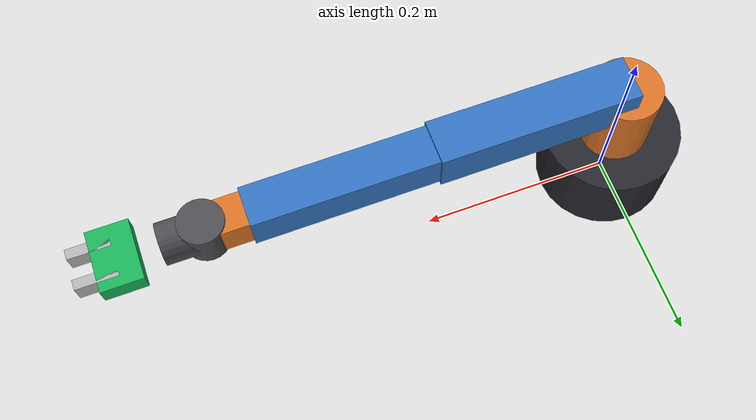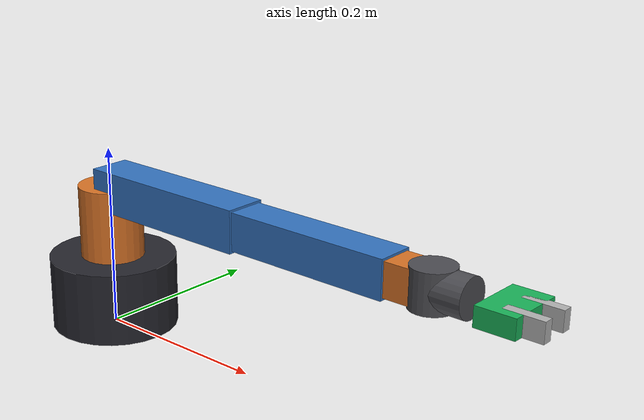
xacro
<?xml version="1.0"?>
<robot xmlns:xacro="http://www.ros.org/wiki/xacro" name="teleop_arm">
  <xacro:arg name="controller_yaml" default=""/>

  <link name="base_link">
    <visual>
      <origin xyz="0 0 0.04" rpy="0 0 0"/>
      <geometry><cylinder radius="0.07" length="0.08"/></geometry>
      <material name="base_mat"><color rgba="0.15 0.15 0.18 1"/></material>
    </visual>
    <collision>
      <origin xyz="0 0 0.04" rpy="0 0 0"/>
      <geometry><cylinder radius="0.07" length="0.08"/></geometry>
    </collision>
    <inertial>
      <mass value="2.0"/>
      <origin xyz="0 0 0.04" rpy="0 0 0"/>
      <inertia ixx="0.004" ixy="0" ixz="0" iyy="0.004" iyz="0" izz="0.005"/>
    </inertial>
  </link>

  <link name="link1">
    <visual>
      <origin xyz="0 0 0.04" rpy="0 0 0"/>
      <geometry><cylinder radius="0.035" length="0.08"/></geometry>
      <material name="l1"><color rgba="0.85 0.45 0.15 1"/></material>
    </visual>
    <collision>
      <origin xyz="0 0 0.04" rpy="0 0 0"/>
      <geometry><cylinder radius="0.035" length="0.08"/></geometry>
    </collision>
    <inertial>
      <mass value="0.6"/>
      <origin xyz="0 0 0.04" rpy="0 0 0"/>
      <inertia ixx="0.001" ixy="0" ixz="0" iyy="0.001" iyz="0" izz="0.0005"/>
    </inertial>
  </link>

  <link name="link2">
    <visual>
      <origin xyz="0.10 0 0" rpy="0 0 0"/>
      <geometry><box size="0.20 0.045 0.045"/></geometry>
      <material name="l2"><color rgba="0.2 0.45 0.75 1"/></material>
    </visual>
    <collision>
      <origin xyz="0.10 0 0" rpy="0 0 0"/>
      <geometry><box size="0.20 0.045 0.045"/></geometry>
    </collision>
    <inertial>
      <mass value="0.8"/>
      <origin xyz="0.10 0 0" rpy="0 0 0"/>
      <inertia ixx="0.0004" ixy="0" ixz="0" iyy="0.003" iyz="0" izz="0.003"/>
    </inertial>
  </link>

  <link name="link3">
    <visual>
      <origin xyz="0.09 0 0" rpy="0 0 0"/>
      <geometry><box size="0.18 0.04 0.04"/></geometry>
      <material name="l3"><color rgba="0.2 0.45 0.75 1"/></material>
    </visual>
    <collision>
      <origin xyz="0.09 0 0" rpy="0 0 0"/>
      <geometry><box size="0.18 0.04 0.04"/></geometry>
    </collision>
    <inertial>
      <mass value="0.6"/>
      <origin xyz="0.09 0 0" rpy="0 0 0"/>
      <inertia ixx="0.0003" ixy="0" ixz="0" iyy="0.002" iyz="0" izz="0.002"/>
    </inertial>
  </link>

  <link name="link4">
    <visual>
      <origin xyz="0.02 0 0" rpy="0 0 0"/>
      <geometry><box size="0.04 0.035 0.035"/></geometry>
      <material name="l4"><color rgba="0.85 0.45 0.15 1"/></material>
    </visual>
    <collision>
      <origin xyz="0.02 0 0" rpy="0 0 0"/>
      <geometry><box size="0.04 0.035 0.035"/></geometry>
    </collision>
    <inertial>
      <mass value="0.2"/>
      <origin xyz="0.02 0 0" rpy="0 0 0"/>
      <inertia ixx="0.0001" ixy="0" ixz="0" iyy="0.0001" iyz="0" izz="0.0001"/>
    </inertial>
  </link>

  <link name="link5">
    <visual>
      <geometry><cylinder radius="0.022" length="0.04"/></geometry>
      <material name="l5"><color rgba="0.3 0.3 0.32 1"/></material>
    </visual>
    <collision>
      <geometry><cylinder radius="0.022" length="0.04"/></geometry>
    </collision>
    <inertial>
      <mass value="0.15"/>
      <inertia ixx="0.00005" ixy="0" ixz="0" iyy="0.00005" iyz="0" izz="0.00004"/>
    </inertial>
  </link>

  <link name="link6">
    <visual>
      <origin xyz="0.02 0 0" rpy="0 1.5708 0"/>
      <geometry><cylinder radius="0.02" length="0.04"/></geometry>
      <material name="l6"><color rgba="0.3 0.3 0.32 1"/></material>
    </visual>
    <collision>
      <origin xyz="0.02 0 0" rpy="0 1.5708 0"/>
      <geometry><cylinder radius="0.02" length="0.04"/></geometry>
    </collision>
    <inertial>
      <mass value="0.12"/>
      <inertia ixx="0.00004" ixy="0" ixz="0" iyy="0.00004" iyz="0" izz="0.00003"/>
    </inertial>
  </link>

  <link name="tool0">
    <visual>
      <origin xyz="0 0 0" rpy="0 0 0"/>
      <geometry><box size="0.04 0.06 0.02"/></geometry>
      <material name="tool"><color rgba="0.1 0.7 0.35 1"/></material>
    </visual>
    <collision>
      <geometry><box size="0.04 0.06 0.02"/></geometry>
    </collision>
    <inertial>
      <mass value="0.08"/>
      <inertia ixx="0.00003" ixy="0" ixz="0" iyy="0.00002" iyz="0" izz="0.00003"/>
    </inertial>
  </link>

  <link name="finger_left_link">
    <visual>
      <origin xyz="0.02 0 0" rpy="0 0 0"/>
      <geometry><box size="0.04 0.01 0.02"/></geometry>
      <material name="finger"><color rgba="0.7 0.7 0.7 1"/></material>
    </visual>
    <collision>
      <origin xyz="0.02 0 0" rpy="0 0 0"/>
      <geometry><box size="0.04 0.01 0.02"/></geometry>
    </collision>
    <inertial>
      <mass value="0.02"/>
      <inertia ixx="0.00001" ixy="0" ixz="0" iyy="0.00001" iyz="0" izz="0.00001"/>
    </inertial>
  </link>

  <link name="finger_right_link">
    <visual>
      <origin xyz="0.02 0 0" rpy="0 0 0"/>
      <geometry><box size="0.04 0.01 0.02"/></geometry>
      <material name="finger2"><color rgba="0.7 0.7 0.7 1"/></material>
    </visual>
    <collision>
      <origin xyz="0.02 0 0" rpy="0 0 0"/>
      <geometry><box size="0.04 0.01 0.02"/></geometry>
    </collision>
    <inertial>
      <mass value="0.02"/>
      <inertia ixx="0.00001" ixy="0" ixz="0" iyy="0.00001" iyz="0" izz="0.00001"/>
    </inertial>
  </link>

  <joint name="joint1" type="revolute">
    <parent link="base_link"/>
    <child link="link1"/>
    <origin xyz="0 0 0.08" rpy="0 0 0"/>
    <axis xyz="0 0 1"/>
    <limit lower="-2.8" upper="2.8" effort="80" velocity="2.0"/>
    <dynamics damping="0.8" friction="0.0"/>
  </joint>
  <joint name="joint2" type="revolute">
    <parent link="link1"/>
    <child link="link2"/>
    <origin xyz="0 0 0.08" rpy="0 0 0"/>
    <axis xyz="0 1 0"/>
    <limit lower="-1.6" upper="1.6" effort="80" velocity="2.0"/>
    <dynamics damping="0.8" friction="0.0"/>
  </joint>
  <joint name="joint3" type="revolute">
    <parent link="link2"/>
    <child link="link3"/>
    <origin xyz="0.20 0 0" rpy="0 0 0"/>
    <axis xyz="0 1 0"/>
    <limit lower="-2.4" upper="2.4" effort="60" velocity="2.0"/>
    <dynamics damping="0.8" friction="0.0"/>
  </joint>
  <joint name="joint4" type="revolute">
    <parent link="link3"/>
    <child link="link4"/>
    <origin xyz="0.18 0 0" rpy="0 0 0"/>
    <axis xyz="0 1 0"/>
    <limit lower="-1.8" upper="1.8" effort="40" velocity="2.0"/>
    <dynamics damping="0.5" friction="0.0"/>
  </joint>
  <joint name="joint5" type="revolute">
    <parent link="link4"/>
    <child link="link5"/>
    <origin xyz="0.04 0 0" rpy="0 0 0"/>
    <axis xyz="0 0 1"/>
    <limit lower="-2.8" upper="2.8" effort="30" velocity="2.0"/>
    <dynamics damping="0.4" friction="0.0"/>
  </joint>
  <joint name="joint6" type="revolute">
    <parent link="link5"/>
    <child link="link6"/>
    <origin xyz="0 0 0" rpy="0 0 0"/>
    <axis xyz="1 0 0"/>
    <limit lower="-2.8" upper="2.8" effort="20" velocity="2.0"/>
    <dynamics damping="0.3" friction="0.0"/>
  </joint>
  <joint name="tool_fixed" type="fixed">
    <parent link="link6"/>
    <child link="tool0"/>
    <origin xyz="0.08 0 0" rpy="0 0 0"/>
  </joint>
  <joint name="finger_left" type="prismatic">
    <parent link="tool0"/>
    <child link="finger_left_link"/>
    <origin xyz="0 0.015 0" rpy="0 0 0"/>
    <axis xyz="0 1 0"/>
    <limit lower="0.0" upper="0.03" effort="20" velocity="0.05"/>
  </joint>
  <joint name="finger_right" type="prismatic">
    <parent link="tool0"/>
    <child link="finger_right_link"/>
    <origin xyz="0 -0.015 0" rpy="0 0 0"/>
    <axis xyz="0 -1 0"/>
    <limit lower="0.0" upper="0.03" effort="20" velocity="0.05"/>
  </joint>

  <ros2_control name="GazeboSystem" type="system">
    <hardware>
      <plugin>gazebo_ros2_control/GazeboSystem</plugin>
    </hardware>
    <joint name="joint1">
      <command_interface name="position"/>
      <state_interface name="position">
        <param name="initial_value">0.0</param>
      </state_interface>
      <state_interface name="velocity"/>
    </joint>
    <joint name="joint2">
      <command_interface name="position"/>
      <state_interface name="position">
        <param name="initial_value">0.55</param>
      </state_interface>
      <state_interface name="velocity"/>
    </joint>
    <joint name="joint3">
      <command_interface name="position"/>
      <state_interface name="position">
        <param name="initial_value">-1.15</param>
      </state_interface>
      <state_interface name="velocity"/>
    </joint>
    <joint name="joint4">
      <command_interface name="position"/>
      <state_interface name="position">
        <param name="initial_value">0.60</param>
      </state_interface>
      <state_interface name="velocity"/>
    </joint>
    <joint name="joint5">
      <command_interface name="position"/>
      <state_interface name="position">
        <param name="initial_value">0.0</param>
      </state_interface>
      <state_interface name="velocity"/>
    </joint>
    <joint name="joint6">
      <command_interface name="position"/>
      <state_interface name="position">
        <param name="initial_value">0.0</param>
      </state_interface>
      <state_interface name="velocity"/>
    </joint>
    <joint name="finger_left">
      <command_interface name="position"/>
      <state_interface name="position">
        <param name="initial_value">0.0</param>
      </state_interface>
      <state_interface name="velocity"/>
    </joint>
    <joint name="finger_right">
      <command_interface name="position"/>
      <state_interface name="position">
        <param name="initial_value">0.0</param>
      </state_interface>
      <state_interface name="velocity"/>
    </joint>
  </ros2_control>

  <gazebo>
    <plugin filename="libgazebo_ros2_control.so" name="gazebo_ros2_control">
      <parameters>$(arg controller_yaml)</parameters>
    </plugin>
  </gazebo>
</robot>
